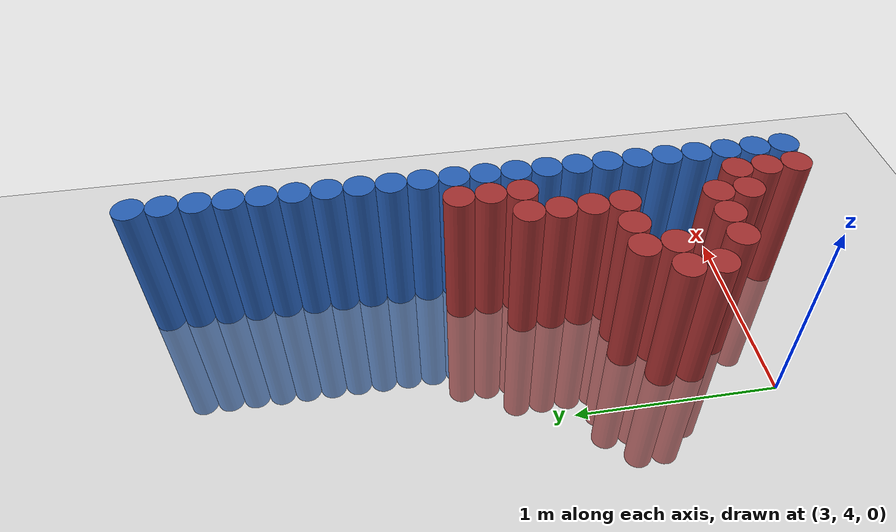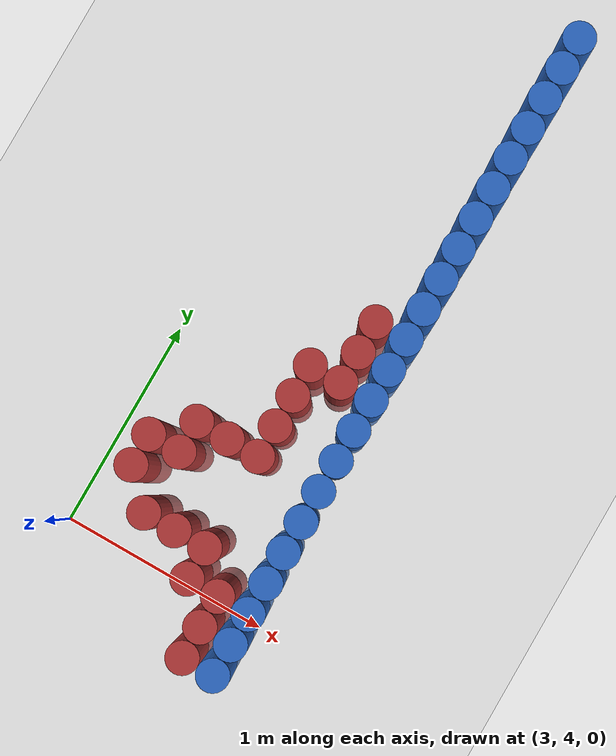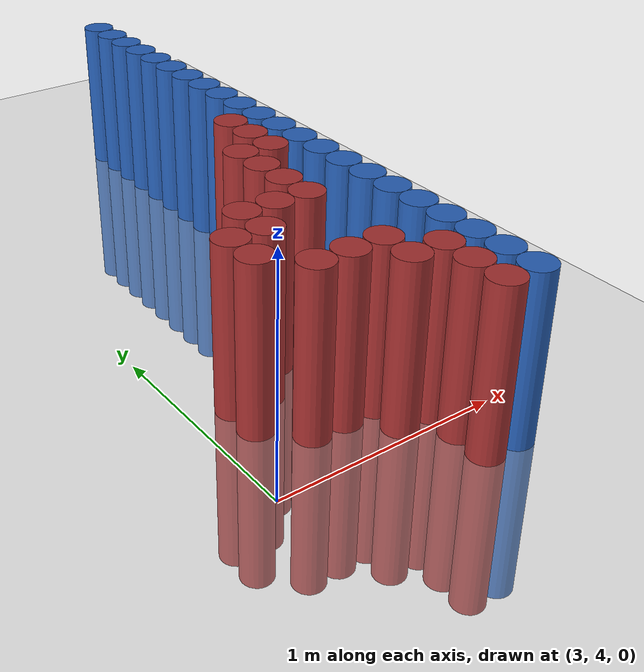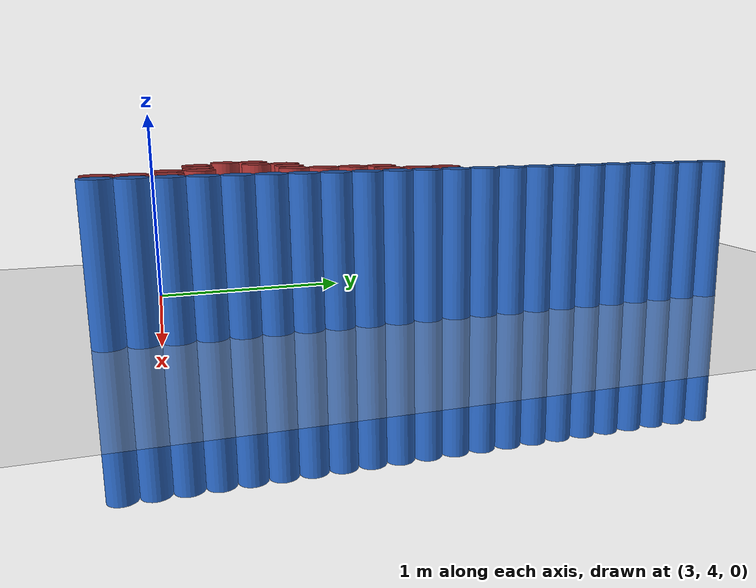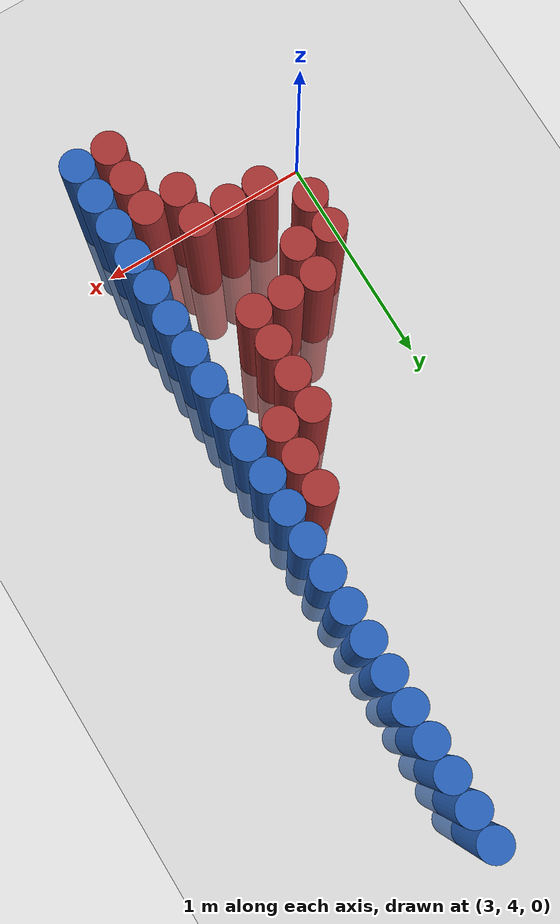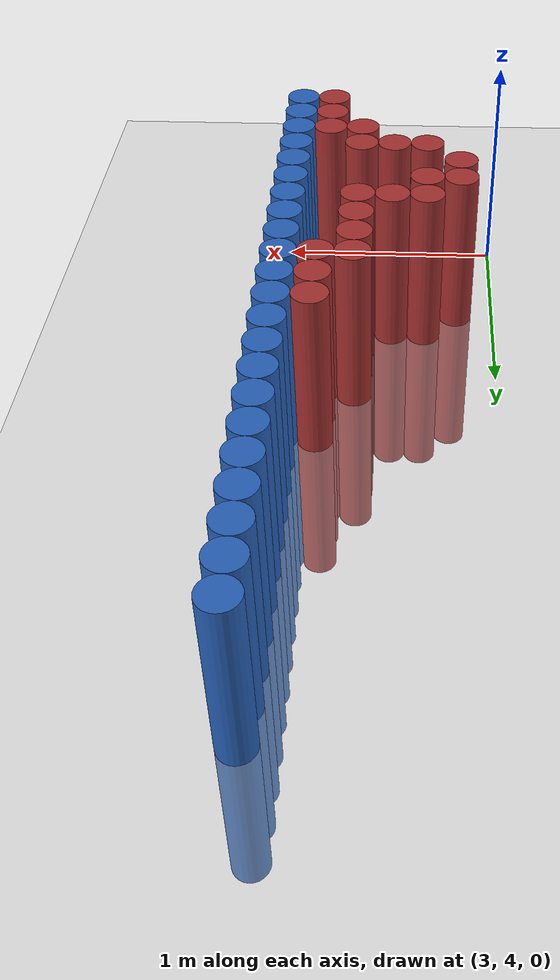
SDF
<sdf version="1.6">
 <world name="default">
  <model name="ground_plane">
   <static>1</static>
   <link name="link">
    <collision name="collision">
     <geometry><plane><normal>0 0 1</normal><size>100 100</size></plane></geometry>
     <surface><friction><ode><mu>100</mu><mu2>50</mu2></ode></friction></surface>
    </collision>
    <visual name="visual">
     <cast_shadows>0</cast_shadows>
     <geometry><plane><normal>0 0 1</normal><size>100 100</size></plane></geometry>
     <material>
      <script><uri>file://media/materials/scripts/gazebo.material</uri><name>Gazebo/Grey</name></script>
     </material>
    </visual>
   </link>
  </model>
  <model name="unit_cylinder_164">
   <static>1</static>
   <pose>3.925000 3.775000 0.000000 0.000000 0.000000 0.000000</pose>
   <link name="link">
    <inertial>
     <mass>1</mass>
     <inertia><ixx>0.145833</ixx><ixy>0</ixy><ixz>0</ixz><iyy>0.145833</iyy><iyz>0</iyz><izz>0.125</izz></inertia>
    </inertial>
    <collision name="collision">
     <geometry><cylinder><radius>0.075000</radius><length>1.5</length></cylinder></geometry>
    </collision>
    <visual name="visual">
     <geometry><cylinder><radius>0.075000</radius><length>1.5</length></cylinder></geometry>
     <material>
      <ambient>0.152000 0.379000 0.720000 1</ambient>
      <diffuse>0.152000 0.379000 0.720000 1</diffuse>
     </material>
     <material>
      <script><name>Gazebo/Grey</name><uri>file://media/materials/scripts/gazebo.material</uri></script>
     </material>
    </visual>
   </link>
  </model>
  <model name="unit_cylinder_166">
   <static>1</static>
   <pose>3.925000 3.925000 0.000000 0.000000 0.000000 0.000000</pose>
   <link name="link">
    <inertial>
     <mass>1</mass>
     <inertia><ixx>0.145833</ixx><ixy>0</ixy><ixz>0</ixz><iyy>0.145833</iyy><iyz>0</iyz><izz>0.125</izz></inertia>
    </inertial>
    <collision name="collision">
     <geometry><cylinder><radius>0.075000</radius><length>1.5</length></cylinder></geometry>
    </collision>
    <visual name="visual">
     <geometry><cylinder><radius>0.075000</radius><length>1.5</length></cylinder></geometry>
     <material>
      <ambient>0.152000 0.379000 0.720000 1</ambient>
      <diffuse>0.152000 0.379000 0.720000 1</diffuse>
     </material>
     <material>
      <script><name>Gazebo/Grey</name><uri>file://media/materials/scripts/gazebo.material</uri></script>
     </material>
    </visual>
   </link>
  </model>
  <model name="unit_cylinder_168">
   <static>1</static>
   <pose>3.925000 4.075000 0.000000 0.000000 0.000000 0.000000</pose>
   <link name="link">
    <inertial>
     <mass>1</mass>
     <inertia><ixx>0.145833</ixx><ixy>0</ixy><ixz>0</ixz><iyy>0.145833</iyy><iyz>0</iyz><izz>0.125</izz></inertia>
    </inertial>
    <collision name="collision">
     <geometry><cylinder><radius>0.075000</radius><length>1.5</length></cylinder></geometry>
    </collision>
    <visual name="visual">
     <geometry><cylinder><radius>0.075000</radius><length>1.5</length></cylinder></geometry>
     <material>
      <ambient>0.152000 0.379000 0.720000 1</ambient>
      <diffuse>0.152000 0.379000 0.720000 1</diffuse>
     </material>
     <material>
      <script><name>Gazebo/Grey</name><uri>file://media/materials/scripts/gazebo.material</uri></script>
     </material>
    </visual>
   </link>
  </model>
  <model name="unit_cylinder_170">
   <static>1</static>
   <pose>3.925000 4.225000 0.000000 0.000000 0.000000 0.000000</pose>
   <link name="link">
    <inertial>
     <mass>1</mass>
     <inertia><ixx>0.145833</ixx><ixy>0</ixy><ixz>0</ixz><iyy>0.145833</iyy><iyz>0</iyz><izz>0.125</izz></inertia>
    </inertial>
    <collision name="collision">
     <geometry><cylinder><radius>0.075000</radius><length>1.5</length></cylinder></geometry>
    </collision>
    <visual name="visual">
     <geometry><cylinder><radius>0.075000</radius><length>1.5</length></cylinder></geometry>
     <material>
      <ambient>0.152000 0.379000 0.720000 1</ambient>
      <diffuse>0.152000 0.379000 0.720000 1</diffuse>
     </material>
     <material>
      <script><name>Gazebo/Grey</name><uri>file://media/materials/scripts/gazebo.material</uri></script>
     </material>
    </visual>
   </link>
  </model>
  <model name="unit_cylinder_172">
   <static>1</static>
   <pose>3.925000 4.375000 0.000000 0.000000 0.000000 0.000000</pose>
   <link name="link">
    <inertial>
     <mass>1</mass>
     <inertia><ixx>0.145833</ixx><ixy>0</ixy><ixz>0</ixz><iyy>0.145833</iyy><iyz>0</iyz><izz>0.125</izz></inertia>
    </inertial>
    <collision name="collision">
     <geometry><cylinder><radius>0.075000</radius><length>1.5</length></cylinder></geometry>
    </collision>
    <visual name="visual">
     <geometry><cylinder><radius>0.075000</radius><length>1.5</length></cylinder></geometry>
     <material>
      <ambient>0.152000 0.379000 0.720000 1</ambient>
      <diffuse>0.152000 0.379000 0.720000 1</diffuse>
     </material>
     <material>
      <script><name>Gazebo/Grey</name><uri>file://media/materials/scripts/gazebo.material</uri></script>
     </material>
    </visual>
   </link>
  </model>
  <model name="unit_cylinder_174">
   <static>1</static>
   <pose>3.925000 4.525000 0.000000 0.000000 0.000000 0.000000</pose>
   <link name="link">
    <inertial>
     <mass>1</mass>
     <inertia><ixx>0.145833</ixx><ixy>0</ixy><ixz>0</ixz><iyy>0.145833</iyy><iyz>0</iyz><izz>0.125</izz></inertia>
    </inertial>
    <collision name="collision">
     <geometry><cylinder><radius>0.075000</radius><length>1.5</length></cylinder></geometry>
    </collision>
    <visual name="visual">
     <geometry><cylinder><radius>0.075000</radius><length>1.5</length></cylinder></geometry>
     <material>
      <ambient>0.152000 0.379000 0.720000 1</ambient>
      <diffuse>0.152000 0.379000 0.720000 1</diffuse>
     </material>
     <material>
      <script><name>Gazebo/Grey</name><uri>file://media/materials/scripts/gazebo.material</uri></script>
     </material>
    </visual>
   </link>
  </model>
  <model name="unit_cylinder_176">
   <static>1</static>
   <pose>3.925000 4.675000 0.000000 0.000000 0.000000 0.000000</pose>
   <link name="link">
    <inertial>
     <mass>1</mass>
     <inertia><ixx>0.145833</ixx><ixy>0</ixy><ixz>0</ixz><iyy>0.145833</iyy><iyz>0</iyz><izz>0.125</izz></inertia>
    </inertial>
    <collision name="collision">
     <geometry><cylinder><radius>0.075000</radius><length>1.5</length></cylinder></geometry>
    </collision>
    <visual name="visual">
     <geometry><cylinder><radius>0.075000</radius><length>1.5</length></cylinder></geometry>
     <material>
      <ambient>0.152000 0.379000 0.720000 1</ambient>
      <diffuse>0.152000 0.379000 0.720000 1</diffuse>
     </material>
     <material>
      <script><name>Gazebo/Grey</name><uri>file://media/materials/scripts/gazebo.material</uri></script>
     </material>
    </visual>
   </link>
  </model>
  <model name="unit_cylinder_178">
   <static>1</static>
   <pose>3.925000 4.825000 0.000000 0.000000 0.000000 0.000000</pose>
   <link name="link">
    <inertial>
     <mass>1</mass>
     <inertia><ixx>0.145833</ixx><ixy>0</ixy><ixz>0</ixz><iyy>0.145833</iyy><iyz>0</iyz><izz>0.125</izz></inertia>
    </inertial>
    <collision name="collision">
     <geometry><cylinder><radius>0.075000</radius><length>1.5</length></cylinder></geometry>
    </collision>
    <visual name="visual">
     <geometry><cylinder><radius>0.075000</radius><length>1.5</length></cylinder></geometry>
     <material>
      <ambient>0.152000 0.379000 0.720000 1</ambient>
      <diffuse>0.152000 0.379000 0.720000 1</diffuse>
     </material>
     <material>
      <script><name>Gazebo/Grey</name><uri>file://media/materials/scripts/gazebo.material</uri></script>
     </material>
    </visual>
   </link>
  </model>
  <model name="unit_cylinder_180">
   <static>1</static>
   <pose>3.925000 4.975000 0.000000 0.000000 0.000000 0.000000</pose>
   <link name="link">
    <inertial>
     <mass>1</mass>
     <inertia><ixx>0.145833</ixx><ixy>0</ixy><ixz>0</ixz><iyy>0.145833</iyy><iyz>0</iyz><izz>0.125</izz></inertia>
    </inertial>
    <collision name="collision">
     <geometry><cylinder><radius>0.075000</radius><length>1.5</length></cylinder></geometry>
    </collision>
    <visual name="visual">
     <geometry><cylinder><radius>0.075000</radius><length>1.5</length></cylinder></geometry>
     <material>
      <ambient>0.152000 0.379000 0.720000 1</ambient>
      <diffuse>0.152000 0.379000 0.720000 1</diffuse>
     </material>
     <material>
      <script><name>Gazebo/Grey</name><uri>file://media/materials/scripts/gazebo.material</uri></script>
     </material>
    </visual>
   </link>
  </model>
  <model name="unit_cylinder_182">
   <static>1</static>
   <pose>3.925000 5.125000 0.000000 0.000000 0.000000 0.000000</pose>
   <link name="link">
    <inertial>
     <mass>1</mass>
     <inertia><ixx>0.145833</ixx><ixy>0</ixy><ixz>0</ixz><iyy>0.145833</iyy><iyz>0</iyz><izz>0.125</izz></inertia>
    </inertial>
    <collision name="collision">
     <geometry><cylinder><radius>0.075000</radius><length>1.5</length></cylinder></geometry>
    </collision>
    <visual name="visual">
     <geometry><cylinder><radius>0.075000</radius><length>1.5</length></cylinder></geometry>
     <material>
      <ambient>0.152000 0.379000 0.720000 1</ambient>
      <diffuse>0.152000 0.379000 0.720000 1</diffuse>
     </material>
     <material>
      <script><name>Gazebo/Grey</name><uri>file://media/materials/scripts/gazebo.material</uri></script>
     </material>
    </visual>
   </link>
  </model>
  <model name="unit_cylinder_184">
   <static>1</static>
   <pose>3.925000 5.275000 0.000000 0.000000 0.000000 0.000000</pose>
   <link name="link">
    <inertial>
     <mass>1</mass>
     <inertia><ixx>0.145833</ixx><ixy>0</ixy><ixz>0</ixz><iyy>0.145833</iyy><iyz>0</iyz><izz>0.125</izz></inertia>
    </inertial>
    <collision name="collision">
     <geometry><cylinder><radius>0.075000</radius><length>1.5</length></cylinder></geometry>
    </collision>
    <visual name="visual">
     <geometry><cylinder><radius>0.075000</radius><length>1.5</length></cylinder></geometry>
     <material>
      <ambient>0.152000 0.379000 0.720000 1</ambient>
      <diffuse>0.152000 0.379000 0.720000 1</diffuse>
     </material>
     <material>
      <script><name>Gazebo/Grey</name><uri>file://media/materials/scripts/gazebo.material</uri></script>
     </material>
    </visual>
   </link>
  </model>
  <model name="unit_cylinder_186">
   <static>1</static>
   <pose>3.925000 5.425000 0.000000 0.000000 0.000000 0.000000</pose>
   <link name="link">
    <inertial>
     <mass>1</mass>
     <inertia><ixx>0.145833</ixx><ixy>0</ixy><ixz>0</ixz><iyy>0.145833</iyy><iyz>0</iyz><izz>0.125</izz></inertia>
    </inertial>
    <collision name="collision">
     <geometry><cylinder><radius>0.075000</radius><length>1.5</length></cylinder></geometry>
    </collision>
    <visual name="visual">
     <geometry><cylinder><radius>0.075000</radius><length>1.5</length></cylinder></geometry>
     <material>
      <ambient>0.152000 0.379000 0.720000 1</ambient>
      <diffuse>0.152000 0.379000 0.720000 1</diffuse>
     </material>
     <material>
      <script><name>Gazebo/Grey</name><uri>file://media/materials/scripts/gazebo.material</uri></script>
     </material>
    </visual>
   </link>
  </model>
  <model name="unit_cylinder_188">
   <static>1</static>
   <pose>3.925000 5.575000 0.000000 0.000000 0.000000 0.000000</pose>
   <link name="link">
    <inertial>
     <mass>1</mass>
     <inertia><ixx>0.145833</ixx><ixy>0</ixy><ixz>0</ixz><iyy>0.145833</iyy><iyz>0</iyz><izz>0.125</izz></inertia>
    </inertial>
    <collision name="collision">
     <geometry><cylinder><radius>0.075000</radius><length>1.5</length></cylinder></geometry>
    </collision>
    <visual name="visual">
     <geometry><cylinder><radius>0.075000</radius><length>1.5</length></cylinder></geometry>
     <material>
      <ambient>0.152000 0.379000 0.720000 1</ambient>
      <diffuse>0.152000 0.379000 0.720000 1</diffuse>
     </material>
     <material>
      <script><name>Gazebo/Grey</name><uri>file://media/materials/scripts/gazebo.material</uri></script>
     </material>
    </visual>
   </link>
  </model>
  <model name="unit_cylinder_190">
   <static>1</static>
   <pose>3.925000 5.725000 0.000000 0.000000 0.000000 0.000000</pose>
   <link name="link">
    <inertial>
     <mass>1</mass>
     <inertia><ixx>0.145833</ixx><ixy>0</ixy><ixz>0</ixz><iyy>0.145833</iyy><iyz>0</iyz><izz>0.125</izz></inertia>
    </inertial>
    <collision name="collision">
     <geometry><cylinder><radius>0.075000</radius><length>1.5</length></cylinder></geometry>
    </collision>
    <visual name="visual">
     <geometry><cylinder><radius>0.075000</radius><length>1.5</length></cylinder></geometry>
     <material>
      <ambient>0.152000 0.379000 0.720000 1</ambient>
      <diffuse>0.152000 0.379000 0.720000 1</diffuse>
     </material>
     <material>
      <script><name>Gazebo/Grey</name><uri>file://media/materials/scripts/gazebo.material</uri></script>
     </material>
    </visual>
   </link>
  </model>
  <model name="unit_cylinder_192">
   <static>1</static>
   <pose>3.925000 5.875000 0.000000 0.000000 0.000000 0.000000</pose>
   <link name="link">
    <inertial>
     <mass>1</mass>
     <inertia><ixx>0.145833</ixx><ixy>0</ixy><ixz>0</ixz><iyy>0.145833</iyy><iyz>0</iyz><izz>0.125</izz></inertia>
    </inertial>
    <collision name="collision">
     <geometry><cylinder><radius>0.075000</radius><length>1.5</length></cylinder></geometry>
    </collision>
    <visual name="visual">
     <geometry><cylinder><radius>0.075000</radius><length>1.5</length></cylinder></geometry>
     <material>
      <ambient>0.152000 0.379000 0.720000 1</ambient>
      <diffuse>0.152000 0.379000 0.720000 1</diffuse>
     </material>
     <material>
      <script><name>Gazebo/Grey</name><uri>file://media/materials/scripts/gazebo.material</uri></script>
     </material>
    </visual>
   </link>
  </model>
  <model name="unit_cylinder_194">
   <static>1</static>
   <pose>3.925000 6.025000 0.000000 0.000000 0.000000 0.000000</pose>
   <link name="link">
    <inertial>
     <mass>1</mass>
     <inertia><ixx>0.145833</ixx><ixy>0</ixy><ixz>0</ixz><iyy>0.145833</iyy><iyz>0</iyz><izz>0.125</izz></inertia>
    </inertial>
    <collision name="collision">
     <geometry><cylinder><radius>0.075000</radius><length>1.5</length></cylinder></geometry>
    </collision>
    <visual name="visual">
     <geometry><cylinder><radius>0.075000</radius><length>1.5</length></cylinder></geometry>
     <material>
      <ambient>0.152000 0.379000 0.720000 1</ambient>
      <diffuse>0.152000 0.379000 0.720000 1</diffuse>
     </material>
     <material>
      <script><name>Gazebo/Grey</name><uri>file://media/materials/scripts/gazebo.material</uri></script>
     </material>
    </visual>
   </link>
  </model>
  <model name="unit_cylinder_196">
   <static>1</static>
   <pose>3.925000 6.175000 0.000000 0.000000 0.000000 0.000000</pose>
   <link name="link">
    <inertial>
     <mass>1</mass>
     <inertia><ixx>0.145833</ixx><ixy>0</ixy><ixz>0</ixz><iyy>0.145833</iyy><iyz>0</iyz><izz>0.125</izz></inertia>
    </inertial>
    <collision name="collision">
     <geometry><cylinder><radius>0.075000</radius><length>1.5</length></cylinder></geometry>
    </collision>
    <visual name="visual">
     <geometry><cylinder><radius>0.075000</radius><length>1.5</length></cylinder></geometry>
     <material>
      <ambient>0.152000 0.379000 0.720000 1</ambient>
      <diffuse>0.152000 0.379000 0.720000 1</diffuse>
     </material>
     <material>
      <script><name>Gazebo/Grey</name><uri>file://media/materials/scripts/gazebo.material</uri></script>
     </material>
    </visual>
   </link>
  </model>
  <model name="unit_cylinder_198">
   <static>1</static>
   <pose>3.925000 6.325000 0.000000 0.000000 0.000000 0.000000</pose>
   <link name="link">
    <inertial>
     <mass>1</mass>
     <inertia><ixx>0.145833</ixx><ixy>0</ixy><ixz>0</ixz><iyy>0.145833</iyy><iyz>0</iyz><izz>0.125</izz></inertia>
    </inertial>
    <collision name="collision">
     <geometry><cylinder><radius>0.075000</radius><length>1.5</length></cylinder></geometry>
    </collision>
    <visual name="visual">
     <geometry><cylinder><radius>0.075000</radius><length>1.5</length></cylinder></geometry>
     <material>
      <ambient>0.152000 0.379000 0.720000 1</ambient>
      <diffuse>0.152000 0.379000 0.720000 1</diffuse>
     </material>
     <material>
      <script><name>Gazebo/Grey</name><uri>file://media/materials/scripts/gazebo.material</uri></script>
     </material>
    </visual>
   </link>
  </model>
  <model name="unit_cylinder_200">
   <static>1</static>
   <pose>3.925000 6.475000 0.000000 0.000000 0.000000 0.000000</pose>
   <link name="link">
    <inertial>
     <mass>1</mass>
     <inertia><ixx>0.145833</ixx><ixy>0</ixy><ixz>0</ixz><iyy>0.145833</iyy><iyz>0</iyz><izz>0.125</izz></inertia>
    </inertial>
    <collision name="collision">
     <geometry><cylinder><radius>0.075000</radius><length>1.5</length></cylinder></geometry>
    </collision>
    <visual name="visual">
     <geometry><cylinder><radius>0.075000</radius><length>1.5</length></cylinder></geometry>
     <material>
      <ambient>0.152000 0.379000 0.720000 1</ambient>
      <diffuse>0.152000 0.379000 0.720000 1</diffuse>
     </material>
     <material>
      <script><name>Gazebo/Grey</name><uri>file://media/materials/scripts/gazebo.material</uri></script>
     </material>
    </visual>
   </link>
  </model>
  <model name="unit_cylinder_202">
   <static>1</static>
   <pose>3.925000 6.625000 0.000000 0.000000 0.000000 0.000000</pose>
   <link name="link">
    <inertial>
     <mass>1</mass>
     <inertia><ixx>0.145833</ixx><ixy>0</ixy><ixz>0</ixz><iyy>0.145833</iyy><iyz>0</iyz><izz>0.125</izz></inertia>
    </inertial>
    <collision name="collision">
     <geometry><cylinder><radius>0.075000</radius><length>1.5</length></cylinder></geometry>
    </collision>
    <visual name="visual">
     <geometry><cylinder><radius>0.075000</radius><length>1.5</length></cylinder></geometry>
     <material>
      <ambient>0.152000 0.379000 0.720000 1</ambient>
      <diffuse>0.152000 0.379000 0.720000 1</diffuse>
     </material>
     <material>
      <script><name>Gazebo/Grey</name><uri>file://media/materials/scripts/gazebo.material</uri></script>
     </material>
    </visual>
   </link>
  </model>
  <model name="unit_cylinder_204">
   <static>1</static>
   <pose>3.925000 6.775000 0.000000 0.000000 0.000000 0.000000</pose>
   <link name="link">
    <inertial>
     <mass>1</mass>
     <inertia><ixx>0.145833</ixx><ixy>0</ixy><ixz>0</ixz><iyy>0.145833</iyy><iyz>0</iyz><izz>0.125</izz></inertia>
    </inertial>
    <collision name="collision">
     <geometry><cylinder><radius>0.075000</radius><length>1.5</length></cylinder></geometry>
    </collision>
    <visual name="visual">
     <geometry><cylinder><radius>0.075000</radius><length>1.5</length></cylinder></geometry>
     <material>
      <ambient>0.152000 0.379000 0.720000 1</ambient>
      <diffuse>0.152000 0.379000 0.720000 1</diffuse>
     </material>
     <material>
      <script><name>Gazebo/Grey</name><uri>file://media/materials/scripts/gazebo.material</uri></script>
     </material>
    </visual>
   </link>
  </model>
  <model name="unit_cylinder_206">
   <static>1</static>
   <pose>3.925000 6.925000 0.000000 0.000000 0.000000 0.000000</pose>
   <link name="link">
    <inertial>
     <mass>1</mass>
     <inertia><ixx>0.145833</ixx><ixy>0</ixy><ixz>0</ixz><iyy>0.145833</iyy><iyz>0</iyz><izz>0.125</izz></inertia>
    </inertial>
    <collision name="collision">
     <geometry><cylinder><radius>0.075000</radius><length>1.5</length></cylinder></geometry>
    </collision>
    <visual name="visual">
     <geometry><cylinder><radius>0.075000</radius><length>1.5</length></cylinder></geometry>
     <material>
      <ambient>0.152000 0.379000 0.720000 1</ambient>
      <diffuse>0.152000 0.379000 0.720000 1</diffuse>
     </material>
     <material>
      <script><name>Gazebo/Grey</name><uri>file://media/materials/scripts/gazebo.material</uri></script>
     </material>
    </visual>
   </link>
  </model>
  <model name="unit_cylinder_614">
   <static>1</static>
   <pose>3.175000 4.375000 0.000000 0.000000 0.000000 0.000000</pose>
   <link name="link">
    <inertial>
     <mass>1</mass>
     <inertia><ixx>0.145833</ixx><ixy>0</ixy><ixz>0</ixz><iyy>0.145833</iyy><iyz>0</iyz><izz>0.125</izz></inertia>
    </inertial>
    <collision name="collision">
     <geometry><cylinder><radius>0.075000</radius><length>1.5</length></cylinder></geometry>
    </collision>
    <visual name="visual">
     <geometry><cylinder><radius>0.075000</radius><length>1.5</length></cylinder></geometry>
     <material>
      <ambient>0.648000 0.192000 0.192000 1</ambient>
      <diffuse>0.648000 0.192000 0.192000 1</diffuse>
     </material>
     <material>
      <script><name>Gazebo/Grey</name><uri>file://media/materials/scripts/gazebo.material</uri></script>
     </material>
    </visual>
   </link>
  </model>
  <model name="unit_cylinder_615">
   <static>1</static>
   <pose>3.175000 4.525000 0.000000 0.000000 0.000000 0.000000</pose>
   <link name="link">
    <inertial>
     <mass>1</mass>
     <inertia><ixx>0.145833</ixx><ixy>0</ixy><ixz>0</ixz><iyy>0.145833</iyy><iyz>0</iyz><izz>0.125</izz></inertia>
    </inertial>
    <collision name="collision">
     <geometry><cylinder><radius>0.075000</radius><length>1.5</length></cylinder></geometry>
    </collision>
    <visual name="visual">
     <geometry><cylinder><radius>0.075000</radius><length>1.5</length></cylinder></geometry>
     <material>
      <ambient>0.648000 0.192000 0.192000 1</ambient>
      <diffuse>0.648000 0.192000 0.192000 1</diffuse>
     </material>
     <material>
      <script><name>Gazebo/Grey</name><uri>file://media/materials/scripts/gazebo.material</uri></script>
     </material>
    </visual>
   </link>
  </model>
  <model name="unit_cylinder_628">
   <static>1</static>
   <pose>3.325000 4.225000 0.000000 0.000000 0.000000 0.000000</pose>
   <link name="link">
    <inertial>
     <mass>1</mass>
     <inertia><ixx>0.145833</ixx><ixy>0</ixy><ixz>0</ixz><iyy>0.145833</iyy><iyz>0</iyz><izz>0.125</izz></inertia>
    </inertial>
    <collision name="collision">
     <geometry><cylinder><radius>0.075000</radius><length>1.5</length></cylinder></geometry>
    </collision>
    <visual name="visual">
     <geometry><cylinder><radius>0.075000</radius><length>1.5</length></cylinder></geometry>
     <material>
      <ambient>0.648000 0.192000 0.192000 1</ambient>
      <diffuse>0.648000 0.192000 0.192000 1</diffuse>
     </material>
     <material>
      <script><name>Gazebo/Grey</name><uri>file://media/materials/scripts/gazebo.material</uri></script>
     </material>
    </visual>
   </link>
  </model>
  <model name="unit_cylinder_629">
   <static>1</static>
   <pose>3.325000 4.525000 0.000000 0.000000 0.000000 0.000000</pose>
   <link name="link">
    <inertial>
     <mass>1</mass>
     <inertia><ixx>0.145833</ixx><ixy>0</ixy><ixz>0</ixz><iyy>0.145833</iyy><iyz>0</iyz><izz>0.125</izz></inertia>
    </inertial>
    <collision name="collision">
     <geometry><cylinder><radius>0.075000</radius><length>1.5</length></cylinder></geometry>
    </collision>
    <visual name="visual">
     <geometry><cylinder><radius>0.075000</radius><length>1.5</length></cylinder></geometry>
     <material>
      <ambient>0.648000 0.192000 0.192000 1</ambient>
      <diffuse>0.648000 0.192000 0.192000 1</diffuse>
     </material>
     <material>
      <script><name>Gazebo/Grey</name><uri>file://media/materials/scripts/gazebo.material</uri></script>
     </material>
    </visual>
   </link>
  </model>
  <model name="unit_cylinder_630">
   <static>1</static>
   <pose>3.325000 4.675000 0.000000 0.000000 0.000000 0.000000</pose>
   <link name="link">
    <inertial>
     <mass>1</mass>
     <inertia><ixx>0.145833</ixx><ixy>0</ixy><ixz>0</ixz><iyy>0.145833</iyy><iyz>0</iyz><izz>0.125</izz></inertia>
    </inertial>
    <collision name="collision">
     <geometry><cylinder><radius>0.075000</radius><length>1.5</length></cylinder></geometry>
    </collision>
    <visual name="visual">
     <geometry><cylinder><radius>0.075000</radius><length>1.5</length></cylinder></geometry>
     <material>
      <ambient>0.648000 0.192000 0.192000 1</ambient>
      <diffuse>0.648000 0.192000 0.192000 1</diffuse>
     </material>
     <material>
      <script><name>Gazebo/Grey</name><uri>file://media/materials/scripts/gazebo.material</uri></script>
     </material>
    </visual>
   </link>
  </model>
  <model name="unit_cylinder_637">
   <static>1</static>
   <pose>3.475000 4.225000 0.000000 0.000000 0.000000 0.000000</pose>
   <link name="link">
    <inertial>
     <mass>1</mass>
     <inertia><ixx>0.145833</ixx><ixy>0</ixy><ixz>0</ixz><iyy>0.145833</iyy><iyz>0</iyz><izz>0.125</izz></inertia>
    </inertial>
    <collision name="collision">
     <geometry><cylinder><radius>0.075000</radius><length>1.5</length></cylinder></geometry>
    </collision>
    <visual name="visual">
     <geometry><cylinder><radius>0.075000</radius><length>1.5</length></cylinder></geometry>
     <material>
      <ambient>0.648000 0.192000 0.192000 1</ambient>
      <diffuse>0.648000 0.192000 0.192000 1</diffuse>
     </material>
     <material>
      <script><name>Gazebo/Grey</name><uri>file://media/materials/scripts/gazebo.material</uri></script>
     </material>
    </visual>
   </link>
  </model>
  <model name="unit_cylinder_638">
   <static>1</static>
   <pose>3.475000 4.675000 0.000000 0.000000 0.000000 0.000000</pose>
   <link name="link">
    <inertial>
     <mass>1</mass>
     <inertia><ixx>0.145833</ixx><ixy>0</ixy><ixz>0</ixz><iyy>0.145833</iyy><iyz>0</iyz><izz>0.125</izz></inertia>
    </inertial>
    <collision name="collision">
     <geometry><cylinder><radius>0.075000</radius><length>1.5</length></cylinder></geometry>
    </collision>
    <visual name="visual">
     <geometry><cylinder><radius>0.075000</radius><length>1.5</length></cylinder></geometry>
     <material>
      <ambient>0.648000 0.192000 0.192000 1</ambient>
      <diffuse>0.648000 0.192000 0.192000 1</diffuse>
     </material>
     <material>
      <script><name>Gazebo/Grey</name><uri>file://media/materials/scripts/gazebo.material</uri></script>
     </material>
    </visual>
   </link>
  </model>
  <model name="unit_cylinder_647">
   <static>1</static>
   <pose>3.625000 4.075000 0.000000 0.000000 0.000000 0.000000</pose>
   <link name="link">
    <inertial>
     <mass>1</mass>
     <inertia><ixx>0.145833</ixx><ixy>0</ixy><ixz>0</ixz><iyy>0.145833</iyy><iyz>0</iyz><izz>0.125</izz></inertia>
    </inertial>
    <collision name="collision">
     <geometry><cylinder><radius>0.075000</radius><length>1.5</length></cylinder></geometry>
    </collision>
    <visual name="visual">
     <geometry><cylinder><radius>0.075000</radius><length>1.5</length></cylinder></geometry>
     <material>
      <ambient>0.648000 0.192000 0.192000 1</ambient>
      <diffuse>0.648000 0.192000 0.192000 1</diffuse>
     </material>
     <material>
      <script><name>Gazebo/Grey</name><uri>file://media/materials/scripts/gazebo.material</uri></script>
     </material>
    </visual>
   </link>
  </model>
  <model name="unit_cylinder_648">
   <static>1</static>
   <pose>3.625000 4.225000 0.000000 0.000000 0.000000 0.000000</pose>
   <link name="link">
    <inertial>
     <mass>1</mass>
     <inertia><ixx>0.145833</ixx><ixy>0</ixy><ixz>0</ixz><iyy>0.145833</iyy><iyz>0</iyz><izz>0.125</izz></inertia>
    </inertial>
    <collision name="collision">
     <geometry><cylinder><radius>0.075000</radius><length>1.5</length></cylinder></geometry>
    </collision>
    <visual name="visual">
     <geometry><cylinder><radius>0.075000</radius><length>1.5</length></cylinder></geometry>
     <material>
      <ambient>0.648000 0.192000 0.192000 1</ambient>
      <diffuse>0.648000 0.192000 0.192000 1</diffuse>
     </material>
     <material>
      <script><name>Gazebo/Grey</name><uri>file://media/materials/scripts/gazebo.material</uri></script>
     </material>
    </visual>
   </link>
  </model>
  <model name="unit_cylinder_649">
   <static>1</static>
   <pose>3.625000 4.675000 0.000000 0.000000 0.000000 0.000000</pose>
   <link name="link">
    <inertial>
     <mass>1</mass>
     <inertia><ixx>0.145833</ixx><ixy>0</ixy><ixz>0</ixz><iyy>0.145833</iyy><iyz>0</iyz><izz>0.125</izz></inertia>
    </inertial>
    <collision name="collision">
     <geometry><cylinder><radius>0.075000</radius><length>1.5</length></cylinder></geometry>
    </collision>
    <visual name="visual">
     <geometry><cylinder><radius>0.075000</radius><length>1.5</length></cylinder></geometry>
     <material>
      <ambient>0.648000 0.192000 0.192000 1</ambient>
      <diffuse>0.648000 0.192000 0.192000 1</diffuse>
     </material>
     <material>
      <script><name>Gazebo/Grey</name><uri>file://media/materials/scripts/gazebo.material</uri></script>
     </material>
    </visual>
   </link>
  </model>
  <model name="unit_cylinder_650">
   <static>1</static>
   <pose>3.625000 4.825000 0.000000 0.000000 0.000000 0.000000</pose>
   <link name="link">
    <inertial>
     <mass>1</mass>
     <inertia><ixx>0.145833</ixx><ixy>0</ixy><ixz>0</ixz><iyy>0.145833</iyy><iyz>0</iyz><izz>0.125</izz></inertia>
    </inertial>
    <collision name="collision">
     <geometry><cylinder><radius>0.075000</radius><length>1.5</length></cylinder></geometry>
    </collision>
    <visual name="visual">
     <geometry><cylinder><radius>0.075000</radius><length>1.5</length></cylinder></geometry>
     <material>
      <ambient>0.648000 0.192000 0.192000 1</ambient>
      <diffuse>0.648000 0.192000 0.192000 1</diffuse>
     </material>
     <material>
      <script><name>Gazebo/Grey</name><uri>file://media/materials/scripts/gazebo.material</uri></script>
     </material>
    </visual>
   </link>
  </model>
  <model name="unit_cylinder_651">
   <static>1</static>
   <pose>3.625000 4.975000 0.000000 0.000000 0.000000 0.000000</pose>
   <link name="link">
    <inertial>
     <mass>1</mass>
     <inertia><ixx>0.145833</ixx><ixy>0</ixy><ixz>0</ixz><iyy>0.145833</iyy><iyz>0</iyz><izz>0.125</izz></inertia>
    </inertial>
    <collision name="collision">
     <geometry><cylinder><radius>0.075000</radius><length>1.5</length></cylinder></geometry>
    </collision>
    <visual name="visual">
     <geometry><cylinder><radius>0.075000</radius><length>1.5</length></cylinder></geometry>
     <material>
      <ambient>0.648000 0.192000 0.192000 1</ambient>
      <diffuse>0.648000 0.192000 0.192000 1</diffuse>
     </material>
     <material>
      <script><name>Gazebo/Grey</name><uri>file://media/materials/scripts/gazebo.material</uri></script>
     </material>
    </visual>
   </link>
  </model>
  <model name="unit_cylinder_652">
   <static>1</static>
   <pose>3.625000 5.125000 0.000000 0.000000 0.000000 0.000000</pose>
   <link name="link">
    <inertial>
     <mass>1</mass>
     <inertia><ixx>0.145833</ixx><ixy>0</ixy><ixz>0</ixz><iyy>0.145833</iyy><iyz>0</iyz><izz>0.125</izz></inertia>
    </inertial>
    <collision name="collision">
     <geometry><cylinder><radius>0.075000</radius><length>1.5</length></cylinder></geometry>
    </collision>
    <visual name="visual">
     <geometry><cylinder><radius>0.075000</radius><length>1.5</length></cylinder></geometry>
     <material>
      <ambient>0.648000 0.192000 0.192000 1</ambient>
      <diffuse>0.648000 0.192000 0.192000 1</diffuse>
     </material>
     <material>
      <script><name>Gazebo/Grey</name><uri>file://media/materials/scripts/gazebo.material</uri></script>
     </material>
    </visual>
   </link>
  </model>
  <model name="unit_cylinder_678">
   <static>1</static>
   <pose>3.775000 3.775000 0.000000 0.000000 0.000000 0.000000</pose>
   <link name="link">
    <inertial>
     <mass>1</mass>
     <inertia><ixx>0.145833</ixx><ixy>0</ixy><ixz>0</ixz><iyy>0.145833</iyy><iyz>0</iyz><izz>0.125</izz></inertia>
    </inertial>
    <collision name="collision">
     <geometry><cylinder><radius>0.075000</radius><length>1.5</length></cylinder></geometry>
    </collision>
    <visual name="visual">
     <geometry><cylinder><radius>0.075000</radius><length>1.5</length></cylinder></geometry>
     <material>
      <ambient>0.648000 0.192000 0.192000 1</ambient>
      <diffuse>0.648000 0.192000 0.192000 1</diffuse>
     </material>
     <material>
      <script><name>Gazebo/Grey</name><uri>file://media/materials/scripts/gazebo.material</uri></script>
     </material>
    </visual>
   </link>
  </model>
  <model name="unit_cylinder_679">
   <static>1</static>
   <pose>3.775000 3.925000 0.000000 0.000000 0.000000 0.000000</pose>
   <link name="link">
    <inertial>
     <mass>1</mass>
     <inertia><ixx>0.145833</ixx><ixy>0</ixy><ixz>0</ixz><iyy>0.145833</iyy><iyz>0</iyz><izz>0.125</izz></inertia>
    </inertial>
    <collision name="collision">
     <geometry><cylinder><radius>0.075000</radius><length>1.5</length></cylinder></geometry>
    </collision>
    <visual name="visual">
     <geometry><cylinder><radius>0.075000</radius><length>1.5</length></cylinder></geometry>
     <material>
      <ambient>0.648000 0.192000 0.192000 1</ambient>
      <diffuse>0.648000 0.192000 0.192000 1</diffuse>
     </material>
     <material>
      <script><name>Gazebo/Grey</name><uri>file://media/materials/scripts/gazebo.material</uri></script>
     </material>
    </visual>
   </link>
  </model>
  <model name="unit_cylinder_680">
   <static>1</static>
   <pose>3.775000 4.075000 0.000000 0.000000 0.000000 0.000000</pose>
   <link name="link">
    <inertial>
     <mass>1</mass>
     <inertia><ixx>0.145833</ixx><ixy>0</ixy><ixz>0</ixz><iyy>0.145833</iyy><iyz>0</iyz><izz>0.125</izz></inertia>
    </inertial>
    <collision name="collision">
     <geometry><cylinder><radius>0.075000</radius><length>1.5</length></cylinder></geometry>
    </collision>
    <visual name="visual">
     <geometry><cylinder><radius>0.075000</radius><length>1.5</length></cylinder></geometry>
     <material>
      <ambient>0.648000 0.192000 0.192000 1</ambient>
      <diffuse>0.648000 0.192000 0.192000 1</diffuse>
     </material>
     <material>
      <script><name>Gazebo/Grey</name><uri>file://media/materials/scripts/gazebo.material</uri></script>
     </material>
    </visual>
   </link>
  </model>
  <model name="unit_cylinder_681">
   <static>1</static>
   <pose>3.775000 5.125000 0.000000 0.000000 0.000000 0.000000</pose>
   <link name="link">
    <inertial>
     <mass>1</mass>
     <inertia><ixx>0.145833</ixx><ixy>0</ixy><ixz>0</ixz><iyy>0.145833</iyy><iyz>0</iyz><izz>0.125</izz></inertia>
    </inertial>
    <collision name="collision">
     <geometry><cylinder><radius>0.075000</radius><length>1.5</length></cylinder></geometry>
    </collision>
    <visual name="visual">
     <geometry><cylinder><radius>0.075000</radius><length>1.5</length></cylinder></geometry>
     <material>
      <ambient>0.648000 0.192000 0.192000 1</ambient>
      <diffuse>0.648000 0.192000 0.192000 1</diffuse>
     </material>
     <material>
      <script><name>Gazebo/Grey</name><uri>file://media/materials/scripts/gazebo.material</uri></script>
     </material>
    </visual>
   </link>
  </model>
  <model name="unit_cylinder_682">
   <static>1</static>
   <pose>3.775000 5.275000 0.000000 0.000000 0.000000 0.000000</pose>
   <link name="link">
    <inertial>
     <mass>1</mass>
     <inertia><ixx>0.145833</ixx><ixy>0</ixy><ixz>0</ixz><iyy>0.145833</iyy><iyz>0</iyz><izz>0.125</izz></inertia>
    </inertial>
    <collision name="collision">
     <geometry><cylinder><radius>0.075000</radius><length>1.5</length></cylinder></geometry>
    </collision>
    <visual name="visual">
     <geometry><cylinder><radius>0.075000</radius><length>1.5</length></cylinder></geometry>
     <material>
      <ambient>0.648000 0.192000 0.192000 1</ambient>
      <diffuse>0.648000 0.192000 0.192000 1</diffuse>
     </material>
     <material>
      <script><name>Gazebo/Grey</name><uri>file://media/materials/scripts/gazebo.material</uri></script>
     </material>
    </visual>
   </link>
  </model>
  <model name="unit_cylinder_683">
   <static>1</static>
   <pose>3.775000 5.425000 0.000000 0.000000 0.000000 0.000000</pose>
   <link name="link">
    <inertial>
     <mass>1</mass>
     <inertia><ixx>0.145833</ixx><ixy>0</ixy><ixz>0</ixz><iyy>0.145833</iyy><iyz>0</iyz><izz>0.125</izz></inertia>
    </inertial>
    <collision name="collision">
     <geometry><cylinder><radius>0.075000</radius><length>1.5</length></cylinder></geometry>
    </collision>
    <visual name="visual">
     <geometry><cylinder><radius>0.075000</radius><length>1.5</length></cylinder></geometry>
     <material>
      <ambient>0.648000 0.192000 0.192000 1</ambient>
      <diffuse>0.648000 0.192000 0.192000 1</diffuse>
     </material>
     <material>
      <script><name>Gazebo/Grey</name><uri>file://media/materials/scripts/gazebo.material</uri></script>
     </material>
    </visual>
   </link>
  </model>
  <model name="unit_cylinder_722">
   <static>1</static>
   <pose>3.925000 3.775000 0.000000 0.000000 0.000000 0.000000</pose>
   <link name="link">
    <inertial>
     <mass>1</mass>
     <inertia><ixx>0.145833</ixx><ixy>0</ixy><ixz>0</ixz><iyy>0.145833</iyy><iyz>0</iyz><izz>0.125</izz></inertia>
    </inertial>
    <collision name="collision">
     <geometry><cylinder><radius>0.075000</radius><length>1.5</length></cylinder></geometry>
    </collision>
    <visual name="visual">
     <geometry><cylinder><radius>0.075000</radius><length>1.5</length></cylinder></geometry>
     <material>
      <ambient>0.152000 0.379000 0.720000 1</ambient>
      <diffuse>0.152000 0.379000 0.720000 1</diffuse>
     </material>
     <material>
      <script><name>Gazebo/Grey</name><uri>file://media/materials/scripts/gazebo.material</uri></script>
     </material>
    </visual>
   </link>
  </model>
  <model name="unit_cylinder_723">
   <static>1</static>
   <pose>3.925000 3.925000 0.000000 0.000000 0.000000 0.000000</pose>
   <link name="link">
    <inertial>
     <mass>1</mass>
     <inertia><ixx>0.145833</ixx><ixy>0</ixy><ixz>0</ixz><iyy>0.145833</iyy><iyz>0</iyz><izz>0.125</izz></inertia>
    </inertial>
    <collision name="collision">
     <geometry><cylinder><radius>0.075000</radius><length>1.5</length></cylinder></geometry>
    </collision>
    <visual name="visual">
     <geometry><cylinder><radius>0.075000</radius><length>1.5</length></cylinder></geometry>
     <material>
      <ambient>0.152000 0.379000 0.720000 1</ambient>
      <diffuse>0.152000 0.379000 0.720000 1</diffuse>
     </material>
     <material>
      <script><name>Gazebo/Grey</name><uri>file://media/materials/scripts/gazebo.material</uri></script>
     </material>
    </visual>
   </link>
  </model>
  <model name="unit_cylinder_724">
   <static>1</static>
   <pose>3.925000 4.075000 0.000000 0.000000 0.000000 0.000000</pose>
   <link name="link">
    <inertial>
     <mass>1</mass>
     <inertia><ixx>0.145833</ixx><ixy>0</ixy><ixz>0</ixz><iyy>0.145833</iyy><iyz>0</iyz><izz>0.125</izz></inertia>
    </inertial>
    <collision name="collision">
     <geometry><cylinder><radius>0.075000</radius><length>1.5</length></cylinder></geometry>
    </collision>
    <visual name="visual">
     <geometry><cylinder><radius>0.075000</radius><length>1.5</length></cylinder></geometry>
     <material>
      <ambient>0.152000 0.379000 0.720000 1</ambient>
      <diffuse>0.152000 0.379000 0.720000 1</diffuse>
     </material>
     <material>
      <script><name>Gazebo/Grey</name><uri>file://media/materials/scripts/gazebo.material</uri></script>
     </material>
    </visual>
   </link>
  </model>
  <model name="unit_cylinder_725">
   <static>1</static>
   <pose>3.925000 4.225000 0.000000 0.000000 0.000000 0.000000</pose>
   <link name="link">
    <inertial>
     <mass>1</mass>
     <inertia><ixx>0.145833</ixx><ixy>0</ixy><ixz>0</ixz><iyy>0.145833</iyy><iyz>0</iyz><izz>0.125</izz></inertia>
    </inertial>
    <collision name="collision">
     <geometry><cylinder><radius>0.075000</radius><length>1.5</length></cylinder></geometry>
    </collision>
    <visual name="visual">
     <geometry><cylinder><radius>0.075000</radius><length>1.5</length></cylinder></geometry>
     <material>
      <ambient>0.152000 0.379000 0.720000 1</ambient>
      <diffuse>0.152000 0.379000 0.720000 1</diffuse>
     </material>
     <material>
      <script><name>Gazebo/Grey</name><uri>file://media/materials/scripts/gazebo.material</uri></script>
     </material>
    </visual>
   </link>
  </model>
  <model name="unit_cylinder_726">
   <static>1</static>
   <pose>3.925000 4.375000 0.000000 0.000000 0.000000 0.000000</pose>
   <link name="link">
    <inertial>
     <mass>1</mass>
     <inertia><ixx>0.145833</ixx><ixy>0</ixy><ixz>0</ixz><iyy>0.145833</iyy><iyz>0</iyz><izz>0.125</izz></inertia>
    </inertial>
    <collision name="collision">
     <geometry><cylinder><radius>0.075000</radius><length>1.5</length></cylinder></geometry>
    </collision>
    <visual name="visual">
     <geometry><cylinder><radius>0.075000</radius><length>1.5</length></cylinder></geometry>
     <material>
      <ambient>0.152000 0.379000 0.720000 1</ambient>
      <diffuse>0.152000 0.379000 0.720000 1</diffuse>
     </material>
     <material>
      <script><name>Gazebo/Grey</name><uri>file://media/materials/scripts/gazebo.material</uri></script>
     </material>
    </visual>
   </link>
  </model>
  <model name="unit_cylinder_727">
   <static>1</static>
   <pose>3.925000 4.525000 0.000000 0.000000 0.000000 0.000000</pose>
   <link name="link">
    <inertial>
     <mass>1</mass>
     <inertia><ixx>0.145833</ixx><ixy>0</ixy><ixz>0</ixz><iyy>0.145833</iyy><iyz>0</iyz><izz>0.125</izz></inertia>
    </inertial>
    <collision name="collision">
     <geometry><cylinder><radius>0.075000</radius><length>1.5</length></cylinder></geometry>
    </collision>
    <visual name="visual">
     <geometry><cylinder><radius>0.075000</radius><length>1.5</length></cylinder></geometry>
     <material>
      <ambient>0.152000 0.379000 0.720000 1</ambient>
      <diffuse>0.152000 0.379000 0.720000 1</diffuse>
     </material>
     <material>
      <script><name>Gazebo/Grey</name><uri>file://media/materials/scripts/gazebo.material</uri></script>
     </material>
    </visual>
   </link>
  </model>
  <model name="unit_cylinder_728">
   <static>1</static>
   <pose>3.925000 4.675000 0.000000 0.000000 0.000000 0.000000</pose>
   <link name="link">
    <inertial>
     <mass>1</mass>
     <inertia><ixx>0.145833</ixx><ixy>0</ixy><ixz>0</ixz><iyy>0.145833</iyy><iyz>0</iyz><izz>0.125</izz></inertia>
    </inertial>
    <collision name="collision">
     <geometry><cylinder><radius>0.075000</radius><length>1.5</length></cylinder></geometry>
    </collision>
    <visual name="visual">
     <geometry><cylinder><radius>0.075000</radius><length>1.5</length></cylinder></geometry>
     <material>
      <ambient>0.152000 0.379000 0.720000 1</ambient>
      <diffuse>0.152000 0.379000 0.720000 1</diffuse>
     </material>
     <material>
      <script><name>Gazebo/Grey</name><uri>file://media/materials/scripts/gazebo.material</uri></script>
     </material>
    </visual>
   </link>
  </model>
  <model name="unit_cylinder_729">
   <static>1</static>
   <pose>3.925000 4.825000 0.000000 0.000000 0.000000 0.000000</pose>
   <link name="link">
    <inertial>
     <mass>1</mass>
     <inertia><ixx>0.145833</ixx><ixy>0</ixy><ixz>0</ixz><iyy>0.145833</iyy><iyz>0</iyz><izz>0.125</izz></inertia>
    </inertial>
    <collision name="collision">
     <geometry><cylinder><radius>0.075000</radius><length>1.5</length></cylinder></geometry>
    </collision>
    <visual name="visual">
     <geometry><cylinder><radius>0.075000</radius><length>1.5</length></cylinder></geometry>
     <material>
      <ambient>0.152000 0.379000 0.720000 1</ambient>
      <diffuse>0.152000 0.379000 0.720000 1</diffuse>
     </material>
     <material>
      <script><name>Gazebo/Grey</name><uri>file://media/materials/scripts/gazebo.material</uri></script>
     </material>
    </visual>
   </link>
  </model>
  <model name="unit_cylinder_730">
   <static>1</static>
   <pose>3.925000 4.975000 0.000000 0.000000 0.000000 0.000000</pose>
   <link name="link">
    <inertial>
     <mass>1</mass>
     <inertia><ixx>0.145833</ixx><ixy>0</ixy><ixz>0</ixz><iyy>0.145833</iyy><iyz>0</iyz><izz>0.125</izz></inertia>
    </inertial>
    <collision name="collision">
     <geometry><cylinder><radius>0.075000</radius><length>1.5</length></cylinder></geometry>
    </collision>
    <visual name="visual">
     <geometry><cylinder><radius>0.075000</radius><length>1.5</length></cylinder></geometry>
     <material>
      <ambient>0.152000 0.379000 0.720000 1</ambient>
      <diffuse>0.152000 0.379000 0.720000 1</diffuse>
     </material>
     <material>
      <script><name>Gazebo/Grey</name><uri>file://media/materials/scripts/gazebo.material</uri></script>
     </material>
    </visual>
   </link>
  </model>
  <model name="unit_cylinder_731">
   <static>1</static>
   <pose>3.925000 5.125000 0.000000 0.000000 0.000000 0.000000</pose>
   <link name="link">
    <inertial>
     <mass>1</mass>
     <inertia><ixx>0.145833</ixx><ixy>0</ixy><ixz>0</ixz><iyy>0.145833</iyy><iyz>0</iyz><izz>0.125</izz></inertia>
    </inertial>
    <collision name="collision">
     <geometry><cylinder><radius>0.075000</radius><length>1.5</length></cylinder></geometry>
    </collision>
    <visual name="visual">
     <geometry><cylinder><radius>0.075000</radius><length>1.5</length></cylinder></geometry>
     <material>
      <ambient>0.152000 0.379000 0.720000 1</ambient>
      <diffuse>0.152000 0.379000 0.720000 1</diffuse>
     </material>
     <material>
      <script><name>Gazebo/Grey</name><uri>file://media/materials/scripts/gazebo.material</uri></script>
     </material>
    </visual>
   </link>
  </model>
  <model name="unit_cylinder_732">
   <static>1</static>
   <pose>3.925000 5.275000 0.000000 0.000000 0.000000 0.000000</pose>
   <link name="link">
    <inertial>
     <mass>1</mass>
     <inertia><ixx>0.145833</ixx><ixy>0</ixy><ixz>0</ixz><iyy>0.145833</iyy><iyz>0</iyz><izz>0.125</izz></inertia>
    </inertial>
    <collision name="collision">
     <geometry><cylinder><radius>0.075000</radius><length>1.5</length></cylinder></geometry>
    </collision>
    <visual name="visual">
     <geometry><cylinder><radius>0.075000</radius><length>1.5</length></cylinder></geometry>
     <material>
      <ambient>0.152000 0.379000 0.720000 1</ambient>
      <diffuse>0.152000 0.379000 0.720000 1</diffuse>
     </material>
     <material>
      <script><name>Gazebo/Grey</name><uri>file://media/materials/scripts/gazebo.material</uri></script>
     </material>
    </visual>
   </link>
  </model>
  <model name="unit_cylinder_733">
   <static>1</static>
   <pose>3.925000 5.425000 0.000000 0.000000 0.000000 0.000000</pose>
   <link name="link">
    <inertial>
     <mass>1</mass>
     <inertia><ixx>0.145833</ixx><ixy>0</ixy><ixz>0</ixz><iyy>0.145833</iyy><iyz>0</iyz><izz>0.125</izz></inertia>
    </inertial>
    <collision name="collision">
     <geometry><cylinder><radius>0.075000</radius><length>1.5</length></cylinder></geometry>
    </collision>
    <visual name="visual">
     <geometry><cylinder><radius>0.075000</radius><length>1.5</length></cylinder></geometry>
     <material>
      <ambient>0.152000 0.379000 0.720000 1</ambient>
      <diffuse>0.152000 0.379000 0.720000 1</diffuse>
     </material>
     <material>
      <script><name>Gazebo/Grey</name><uri>file://media/materials/scripts/gazebo.material</uri></script>
     </material>
    </visual>
   </link>
  </model>
 </world>
</sdf>
